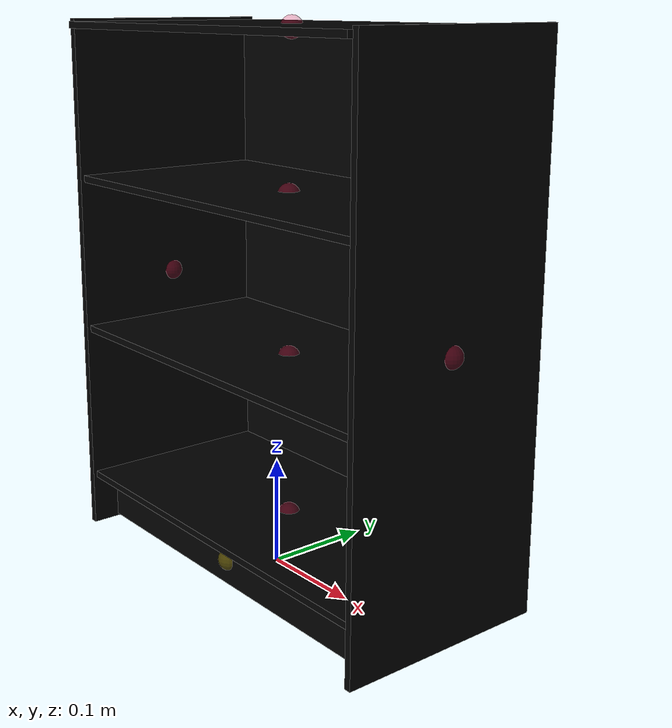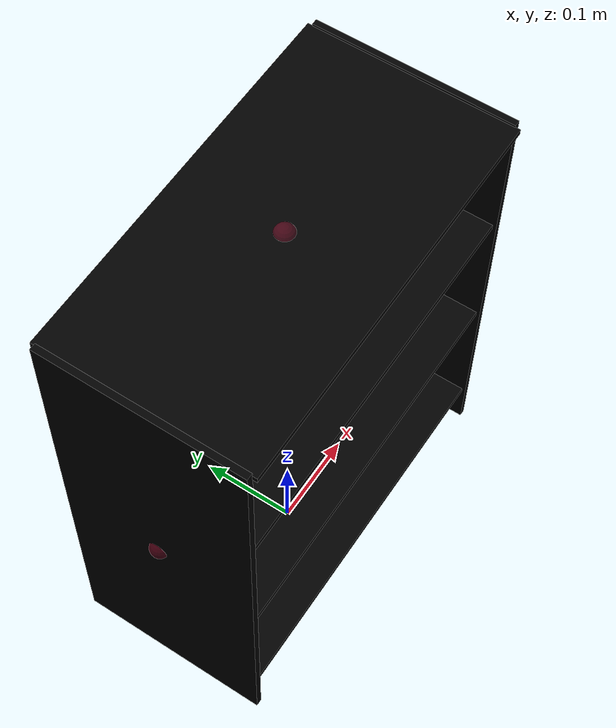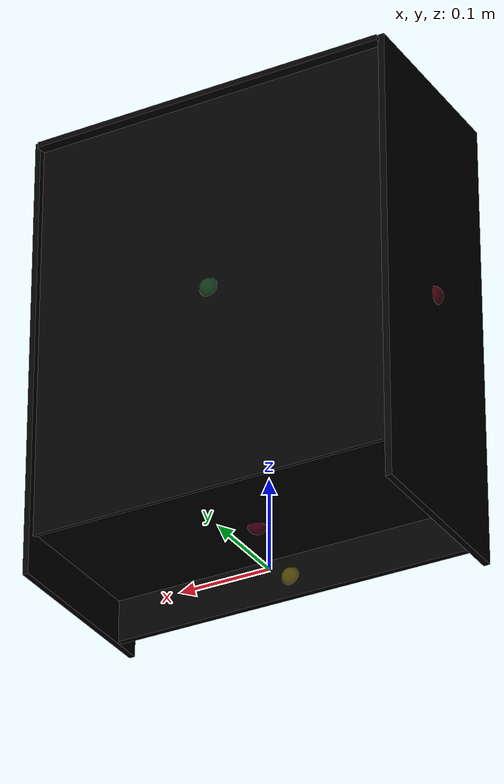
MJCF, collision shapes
<mujoco model="bookcase_billy_0190">
  <custom>
    <numeric data="-0.59152 0.200584 0.003247 0.50002 -0.49998 -0.50002 -0.49998" name="0_part0_initpos" />
    <numeric data="0.204606 0.237244 0.003247 0.674164 0.0 0.0 0.738582" name="7_part7_initpos" />
    <numeric data="-0.063768 0.239229 0.003247 0.688353 0.0 0.0 0.725376" name="6_part6_initpos" />
    <numeric data="0.17315 -0.227664 0.001744 0.707089 0.707089 -0.005017 -0.005017" name="5_part5_initpos" />
    <numeric data="-0.32363 0.248487 0.003247 0.69849 -0.0 -0.0 0.71562" name="4_part4_initpos" />
    <numeric data="0.497228 0.203915 0.002886 0.499994 -0.500006 0.499994 0.500006" name="3_part3_initpos" />
    <numeric data="-0.251576 -0.026907 0.003247 0.707101 0.7071 -0.00299 -0.00299" name="2_part2_initpos" />
    <numeric data="-0.287173 -0.203213 0.003247 0.998793 0.0 0.0 -0.04911" name="1_part1_initpos" />
  </custom>
  <asset>
    <mesh file="bookcase_billy_0190/0.stl" name="part0" scale="0.0005160960000000001 0.0005160960000000001 0.0005160960000000001" />
    <mesh file="bookcase_billy_0190/7.stl" name="part7" scale="0.0005160960000000001 0.0005160960000000001 0.0005160960000000001" />
    <mesh file="bookcase_billy_0190/6.stl" name="part6" scale="0.0005160960000000001 0.0005160960000000001 0.0005160960000000001" />
    <mesh file="bookcase_billy_0190/5.stl" name="part5" scale="0.0005160960000000001 0.0005160960000000001 0.0005160960000000001" />
    <mesh file="bookcase_billy_0190/4.stl" name="part4" scale="0.0005160960000000001 0.0005160960000000001 0.0005160960000000001" />
    <mesh file="bookcase_billy_0190/3.stl" name="part3" scale="0.0005160960000000001 0.0005160960000000001 0.0005160960000000001" />
    <mesh file="bookcase_billy_0190/2.stl" name="part2" scale="0.0005160960000000001 0.0005160960000000001 0.0005160960000000001" />
    <mesh file="bookcase_billy_0190/1.stl" name="part1" scale="0.0005160960000000001 0.0005160960000000001 0.0005160960000000001" />
  </asset>
  <worldbody><body name="combined_body" pos="-0.19 0.01 0.24906793275000003" quat="1 0 0 0"><geom conaffinity="0" contype="0" density="0" mesh="part0" name="0_part0_mesh" pos="0.0 1.032192e-09 0.0" rgba="0.82 0.71 0.55 1" type="mesh" quat="1 0 0 0" />
      <geom density="50" name="noviz_collision_0_part0_0" pos="0.0 1.032192e-09 0.0" quat="1 0 0 0" rgba="0 0 0 0" size="0.0034578431999999996 0.10203863040000001 0.2513968128" solref="0.001 1" type="box" />
    <site name="0_part0_horizontal_radius_site" pos="0.0 1.032192e-09 0.0" quat="1 0 0 0" rgba="0 0 0 0" size="0.010321919999999998" />
      <site name="0_part0_top_site" pos="0.0 1.032192e-09 0.0" quat="1 0 0 0" rgba="0 0 0 0" size="0.010321919999999998" />
      <site name="0_part0_bottom_site" pos="0.0 1.032192e-09 0.0" quat="1 0 0 0" rgba="0 0 0 0" size="0.010321919999999998" />
      <site name="0_part0_corner_site8" pos="0.0 1.032192e-09 0.0" quat="1 0 0 0" rgba="0 0 0 0" size="0.010321919999999998" />
      <site name="0_part0_corner_site7" pos="0.0 1.032192e-09 0.0" quat="1 0 0 0" rgba="0 0 0 0" size="0.010321919999999998" />
      <site name="0_part0_corner_site6" pos="0.0 1.032192e-09 0.0" quat="1 0 0 0" rgba="0 0 0 0" size="0.010321919999999998" />
      <site name="0_part0_corner_site5" pos="0.0 1.032192e-09 0.0" quat="1 0 0 0" rgba="0 0 0 0" size="0.010321919999999998" />
      <site name="0_part0_corner_site4" pos="0.0 1.032192e-09 0.0" quat="1 0 0 0" rgba="0 0 0 0" size="0.010321919999999998" />
      <site name="0_part0_corner_site3" pos="0.0 1.032192e-09 0.0" quat="1 0 0 0" rgba="0 0 0 0" size="0.010321919999999998" />
      <site name="0_part0_corner_site2" pos="0.0 1.032192e-09 0.0" quat="1 0 0 0" rgba="0 0 0 0" size="0.010321919999999998" />
      <site name="0_part0_corner_site1" pos="0.0 1.032192e-09 0.0" quat="1 0 0 0" rgba="0 0 0 0" size="0.010321919999999998" />
      <site name="sidepanel-horpanel,0,180,conn_site7" pos="0.0 1.032192e-09 0.0" quat="1 0 0 0" rgba="0.9019 0.0980 0.2941 0.3" size="0.010321919999999998" />
      <site name="sidepanel-horpanel,0,180,conn_site6" pos="0.0 1.032192e-09 0.0" quat="1 0 0 0" rgba="0.9019 0.0980 0.2941 0.3" size="0.010321919999999998" />
      <site name="sidepanel-horpanel,0,180,conn_site5" pos="0.0 1.032192e-09 0.0" quat="1 0 0 0" rgba="0.9019 0.0980 0.2941 0.3" size="0.010321919999999998" />
      <site name="sidepanel-horpanel,0,180,conn_site4" pos="0.0 1.032192e-09 0.0" quat="1 0 0 0" rgba="0.9019 0.0980 0.2941 0.3" size="0.010321919999999998" />
      <geom conaffinity="0" contype="0" density="0" mesh="part7" name="7_part7_mesh" pos="0.199909787148288 -0.0033464315953152003 0.1021396950024192" rgba="0.82 0.71 0.55 1" type="mesh" quat="1 0 0 0" />
      <geom density="50" name="noviz_collision_7_part7_0" pos="0.199909787148288 -0.0033464315953152003 0.1021396950024192" quat="1 0 0 0" rgba="0 0 0 0" size="0.196632576 0.09496811520000001 0.0032772096000000003" solref="0.001 1" type="box" />
    <site name="7_part7_horizontal_radius_site" pos="0.199909787148288 -0.0033464315953152003 0.1021396950024192" quat="1 0 0 0" rgba="0 0 0 0" size="0.010321919999999998" />
      <site name="7_part7_top_site" pos="0.199909787148288 -0.0033464315953152003 0.1021396950024192" quat="1 0 0 0" rgba="0 0 0 0" size="0.010321919999999998" />
      <site name="7_part7_bottom_site" pos="0.199909787148288 -0.0033464315953152003 0.1021396950024192" quat="1 0 0 0" rgba="0 0 0 0" size="0.010321919999999998" />
      <site name="7_part7_corner_site8" pos="0.199909787148288 -0.0033464315953152003 0.1021396950024192" quat="1 0 0 0" rgba="0 0 0 0" size="0.010321919999999998" />
      <site name="7_part7_corner_site7" pos="0.199909787148288 -0.0033464315953152003 0.1021396950024192" quat="1 0 0 0" rgba="0 0 0 0" size="0.010321919999999998" />
      <site name="7_part7_corner_site6" pos="0.199909787148288 -0.0033464315953152003 0.1021396950024192" quat="1 0 0 0" rgba="0 0 0 0" size="0.010321919999999998" />
      <site name="7_part7_corner_site5" pos="0.199909787148288 -0.0033464315953152003 0.1021396950024192" quat="1 0 0 0" rgba="0 0 0 0" size="0.010321919999999998" />
      <site name="7_part7_corner_site4" pos="0.199909787148288 -0.0033464315953152003 0.1021396950024192" quat="1 0 0 0" rgba="0 0 0 0" size="0.010321919999999998" />
      <site name="7_part7_corner_site3" pos="0.199909787148288 -0.0033464315953152003 0.1021396950024192" quat="1 0 0 0" rgba="0 0 0 0" size="0.010321919999999998" />
      <site name="7_part7_corner_site2" pos="0.199909787148288 -0.0033464315953152003 0.1021396950024192" quat="1 0 0 0" rgba="0 0 0 0" size="0.010321919999999998" />
      <site name="7_part7_corner_site1" pos="0.199909787148288 -0.0033464315953152003 0.1021396950024192" quat="1 0 0 0" rgba="0 0 0 0" size="0.010321919999999998" />
      <site name="horpanel-sidepanel,0,180,conn_site6" pos="0.199909787148288 -0.0033464315953152003 0.1021396950024192" quat="1 0 0 0" rgba="0.9019 0.0980 0.2941 0.3" size="0.010321919999999998" />
      <site name="horpanel-sidepanel,0,180,conn_site2" pos="0.199909787148288 -0.0033464315953152003 0.1021396950024192" quat="1 0 0 0" rgba="0.9019 0.0980 0.2941 0.3" size="0.010321919999999998" />
      <geom conaffinity="0" contype="0" density="0" mesh="part6" name="6_part6_mesh" pos="0.199909787148288 -0.0033464315953152003 -0.046427141246976" rgba="0.82 0.71 0.55 1" type="mesh" quat="1 0 0 0" />
      <geom density="50" name="noviz_collision_6_part6_0" pos="0.199909787148288 -0.0033464315953152003 -0.046427141246976" quat="1 0 0 0" rgba="0 0 0 0" size="0.196632576 0.09496811520000001 0.0032772096000000003" solref="0.001 1" type="box" />
    <site name="6_part6_horizontal_radius_site" pos="0.199909787148288 -0.0033464315953152003 -0.046427141246976" quat="1 0 0 0" rgba="0 0 0 0" size="0.010321919999999998" />
      <site name="6_part6_top_site" pos="0.199909787148288 -0.0033464315953152003 -0.046427141246976" quat="1 0 0 0" rgba="0 0 0 0" size="0.010321919999999998" />
      <site name="6_part6_bottom_site" pos="0.199909787148288 -0.0033464315953152003 -0.046427141246976" quat="1 0 0 0" rgba="0 0 0 0" size="0.010321919999999998" />
      <site name="6_part6_corner_site8" pos="0.199909787148288 -0.0033464315953152003 -0.046427141246976" quat="1 0 0 0" rgba="0 0 0 0" size="0.010321919999999998" />
      <site name="6_part6_corner_site7" pos="0.199909787148288 -0.0033464315953152003 -0.046427141246976" quat="1 0 0 0" rgba="0 0 0 0" size="0.010321919999999998" />
      <site name="6_part6_corner_site6" pos="0.199909787148288 -0.0033464315953152003 -0.046427141246976" quat="1 0 0 0" rgba="0 0 0 0" size="0.010321919999999998" />
      <site name="6_part6_corner_site5" pos="0.199909787148288 -0.0033464315953152003 -0.046427141246976" quat="1 0 0 0" rgba="0 0 0 0" size="0.010321919999999998" />
      <site name="6_part6_corner_site4" pos="0.199909787148288 -0.0033464315953152003 -0.046427141246976" quat="1 0 0 0" rgba="0 0 0 0" size="0.010321919999999998" />
      <site name="6_part6_corner_site3" pos="0.199909787148288 -0.0033464315953152003 -0.046427141246976" quat="1 0 0 0" rgba="0 0 0 0" size="0.010321919999999998" />
      <site name="6_part6_corner_site2" pos="0.199909787148288 -0.0033464315953152003 -0.046427141246976" quat="1 0 0 0" rgba="0 0 0 0" size="0.010321919999999998" />
      <site name="6_part6_corner_site1" pos="0.199909787148288 -0.0033464315953152003 -0.046427141246976" quat="1 0 0 0" rgba="0 0 0 0" size="0.010321919999999998" />
      <site name="horpanel-sidepanel,0,180,conn_site5" pos="0.199909787148288 -0.0033464315953152003 -0.046427141246976" quat="1 0 0 0" rgba="0.9019 0.0980 0.2941 0.3" size="0.010321919999999998" />
      <site name="horpanel-sidepanel,0,180,conn_site1" pos="0.199909787148288 -0.0033464315953152003 -0.046427141246976" quat="1 0 0 0" rgba="0.9019 0.0980 0.2941 0.3" size="0.010321919999999998" />
      <geom conaffinity="0" contype="0" density="0" mesh="part5" name="5_part5_mesh" pos="0.19990978560000003 0.09340047272263681 0.0196632544518144" rgba="0.82 0.71 0.55 1" type="mesh" quat="1 0 0 0" />
      <geom density="50" name="noviz_collision_5_part5_0" pos="0.19990978560000003 0.09340047272263681 0.0196632544518144" quat="1 0 0 0" rgba="0 0 0 0" size="0.19827118079999997 0.00177408 0.2260887552" solref="0.001 1" type="box" />
      <site name="5_part5_horizontal_radius_site" pos="0.19990978560000003 0.09340047272263681 0.0196632544518144" quat="1 0 0 0" rgba="0 0 0 0" size="0.010321919999999998" />
      <site name="5_part5_top_site" pos="0.19990978560000003 0.09340047272263681 0.0196632544518144" quat="1 0 0 0" rgba="0 0 0 0" size="0.010321919999999998" />
      <site name="5_part5_bottom_site" pos="0.19990978560000003 0.09340047272263681 0.0196632544518144" quat="1 0 0 0" rgba="0 0 0 0" size="0.010321919999999998" />
      <site name="5_part5_corner_site8" pos="0.19990978560000003 0.09340047272263681 0.0196632544518144" quat="1 0 0 0" rgba="0 0 0 0" size="0.010321919999999998" />
      <site name="5_part5_corner_site7" pos="0.19990978560000003 0.09340047272263681 0.0196632544518144" quat="1 0 0 0" rgba="0 0 0 0" size="0.010321919999999998" />
      <site name="5_part5_corner_site6" pos="0.19990978560000003 0.09340047272263681 0.0196632544518144" quat="1 0 0 0" rgba="0 0 0 0" size="0.010321919999999998" />
      <site name="5_part5_corner_site5" pos="0.19990978560000003 0.09340047272263681 0.0196632544518144" quat="1 0 0 0" rgba="0 0 0 0" size="0.010321919999999998" />
      <site name="5_part5_corner_site4" pos="0.19990978560000003 0.09340047272263681 0.0196632544518144" quat="1 0 0 0" rgba="0 0 0 0" size="0.010321919999999998" />
      <site name="5_part5_corner_site3" pos="0.19990978560000003 0.09340047272263681 0.0196632544518144" quat="1 0 0 0" rgba="0 0 0 0" size="0.010321919999999998" />
      <site name="5_part5_corner_site2" pos="0.19990978560000003 0.09340047272263681 0.0196632544518144" quat="1 0 0 0" rgba="0 0 0 0" size="0.010321919999999998" />
      <site name="5_part5_corner_site1" pos="0.19990978560000003 0.09340047272263681 0.0196632544518144" quat="1 0 0 0" rgba="0 0 0 0" size="0.010321919999999998" />
      <site name="backpanel-horpanel,0,180,conn_site1" pos="0.19990978560000003 0.09340047272263681 0.0196632544518144" quat="1 0 0 0" rgba="0.2352 0.7058 0.2941 0.3" size="0.010321919999999998" />
    <geom conaffinity="0" contype="0" density="0" mesh="part4" name="4_part4_mesh" pos="0.199909787148288 1.032192e-09 0.24579071999999996" rgba="0.82 0.71 0.55 1" type="mesh" quat="1 0 0 0" />
      <geom density="50" name="noviz_collision_4_part4_0" pos="0.199909787148288 1.032192e-09 0.24579071999999996" quat="1 0 0 0" rgba="0 0 0 0" size="0.19733575679999998 0.10697379839999999 0.0031030272" solref="0.001 1" type="box" />
    <site name="4_part4_horizontal_radius_site" pos="0.199909787148288 1.032192e-09 0.24579071999999996" quat="1 0 0 0" rgba="0 0 0 0" size="0.010321919999999998" />
      <site name="4_part4_top_site" pos="0.199909787148288 1.032192e-09 0.24579071999999996" quat="1 0 0 0" rgba="0 0 0 0" size="0.010321919999999998" />
      <site name="4_part4_bottom_site" pos="0.199909787148288 1.032192e-09 0.24579071999999996" quat="1 0 0 0" rgba="0 0 0 0" size="0.010321919999999998" />
      <site name="4_part4_corner_site8" pos="0.199909787148288 1.032192e-09 0.24579071999999996" quat="1 0 0 0" rgba="0 0 0 0" size="0.010321919999999998" />
      <site name="4_part4_corner_site7" pos="0.199909787148288 1.032192e-09 0.24579071999999996" quat="1 0 0 0" rgba="0 0 0 0" size="0.010321919999999998" />
      <site name="4_part4_corner_site6" pos="0.199909787148288 1.032192e-09 0.24579071999999996" quat="1 0 0 0" rgba="0 0 0 0" size="0.010321919999999998" />
      <site name="4_part4_corner_site5" pos="0.199909787148288 1.032192e-09 0.24579071999999996" quat="1 0 0 0" rgba="0 0 0 0" size="0.010321919999999998" />
      <site name="4_part4_corner_site4" pos="0.199909787148288 1.032192e-09 0.24579071999999996" quat="1 0 0 0" rgba="0 0 0 0" size="0.010321919999999998" />
      <site name="4_part4_corner_site3" pos="0.199909787148288 1.032192e-09 0.24579071999999996" quat="1 0 0 0" rgba="0 0 0 0" size="0.010321919999999998" />
      <site name="4_part4_corner_site2" pos="0.199909787148288 1.032192e-09 0.24579071999999996" quat="1 0 0 0" rgba="0 0 0 0" size="0.010321919999999998" />
      <site name="4_part4_corner_site1" pos="0.199909787148288 1.032192e-09 0.24579071999999996" quat="1 0 0 0" rgba="0 0 0 0" size="0.010321919999999998" />
      <site name="horpanel-sidepanel,0,180,conn_site7" pos="0.199909787148288 1.032192e-09 0.24579071999999996" quat="1 0 0 0" rgba="0.9019 0.0980 0.2941 0.3" size="0.010321919999999998" />
      <site name="horpanel-sidepanel,0,180,conn_site3" pos="0.199909787148288 1.032192e-09 0.24579071999999996" quat="1 0 0 0" rgba="0.9019 0.0980 0.2941 0.3" size="0.010321919999999998" />
      <geom conaffinity="0" contype="0" density="0" mesh="part3" name="3_part3_mesh" pos="0.39981957754798075 1.032192e-09 0.0" rgba="0.82 0.71 0.55 1" type="mesh" quat="1 0 0 0" />
      <geom density="50" name="noviz_collision_3_part3_0" pos="0.39981957754798075 1.032192e-09 0.0" quat="1 0 0 0" rgba="0 0 0 0" size="0.0030965759999999993 0.10203863040000001 0.2513968128" solref="0.001 1" type="box" />
    <site name="3_part3_horizontal_radius_site" pos="0.39981957754798075 1.032192e-09 0.0" quat="1 0 0 0" rgba="0 0 0 0" size="0.010321919999999998" />
      <site name="3_part3_top_site" pos="0.39981957754798075 1.032192e-09 0.0" quat="1 0 0 0" rgba="0 0 0 0" size="0.010321919999999998" />
      <site name="3_part3_bottom_site" pos="0.39981957754798075 1.032192e-09 0.0" quat="1 0 0 0" rgba="0 0 0 0" size="0.010321919999999998" />
      <site name="3_part3_corner_site8" pos="0.39981957754798075 1.032192e-09 0.0" quat="1 0 0 0" rgba="0 0 0 0" size="0.010321919999999998" />
      <site name="3_part3_corner_site7" pos="0.39981957754798075 1.032192e-09 0.0" quat="1 0 0 0" rgba="0 0 0 0" size="0.010321919999999998" />
      <site name="3_part3_corner_site6" pos="0.39981957754798075 1.032192e-09 0.0" quat="1 0 0 0" rgba="0 0 0 0" size="0.010321919999999998" />
      <site name="3_part3_corner_site5" pos="0.39981957754798075 1.032192e-09 0.0" quat="1 0 0 0" rgba="0 0 0 0" size="0.010321919999999998" />
      <site name="3_part3_corner_site4" pos="0.39981957754798075 1.032192e-09 0.0" quat="1 0 0 0" rgba="0 0 0 0" size="0.010321919999999998" />
      <site name="3_part3_corner_site3" pos="0.39981957754798075 1.032192e-09 0.0" quat="1 0 0 0" rgba="0 0 0 0" size="0.010321919999999998" />
      <site name="3_part3_corner_site2" pos="0.39981957754798075 1.032192e-09 0.0" quat="1 0 0 0" rgba="0 0 0 0" size="0.010321919999999998" />
      <site name="3_part3_corner_site1" pos="0.39981957754798075 1.032192e-09 0.0" quat="1 0 0 0" rgba="0 0 0 0" size="0.010321919999999998" />
      <site name="sidepanel-horpanel,0,180,conn_site3" pos="0.39981957754798075 1.032192e-09 0.0" quat="1 0 0 0" rgba="0.9019 0.0980 0.2941 0.3" size="0.010321919999999998" />
      <site name="sidepanel-horpanel,0,180,conn_site2" pos="0.39981957754798075 1.032192e-09 0.0" quat="1 0 0 0" rgba="0.9019 0.0980 0.2941 0.3" size="0.010321919999999998" />
      <site name="sidepanel-horpanel,0,180,conn_site1" pos="0.39981957754798075 1.032192e-09 0.0" quat="1 0 0 0" rgba="0.9019 0.0980 0.2941 0.3" size="0.010321919999999998" />
      <site name="sidepanel-horpanel,0,180,conn_site0" pos="0.39981957754798075 1.032192e-09 0.0" quat="1 0 0 0" rgba="0.9019 0.0980 0.2941 0.3" size="0.010321919999999998" />
      <geom conaffinity="0" contype="0" density="0" mesh="part2" name="2_part2_mesh" pos="0.199909787148288 -0.07246294013952 -0.2261274651353088" rgba="0.82 0.71 0.55 1" type="mesh" quat="1 0 0 0" />
      <geom density="50" name="noviz_collision_2_part2_0" pos="0.199909787148288 -0.07246294013952 -0.2261274651353088" quat="1 0 0 0" rgba="0 0 0 0" size="0.196632576 0.0032772096000000003 0.022901759999999997" solref="0.001 1" type="box" />
    <site name="2_part2_horizontal_radius_site" pos="0.199909787148288 -0.07246294013952 -0.2261274651353088" quat="1 0 0 0" rgba="0 0 0 0" size="0.010321919999999998" />
      <site name="2_part2_top_site" pos="0.199909787148288 -0.07246294013952 -0.2261274651353088" quat="1 0 0 0" rgba="0 0 0 0" size="0.010321919999999998" />
      <site name="2_part2_bottom_site" pos="0.199909787148288 -0.07246294013952 -0.2261274651353088" quat="1 0 0 0" rgba="0 0 0 0" size="0.010321919999999998" />
      <site name="2_part2_corner_site8" pos="0.199909787148288 -0.07246294013952 -0.2261274651353088" quat="1 0 0 0" rgba="0 0 0 0" size="0.010321919999999998" />
      <site name="2_part2_corner_site7" pos="0.199909787148288 -0.07246294013952 -0.2261274651353088" quat="1 0 0 0" rgba="0 0 0 0" size="0.010321919999999998" />
      <site name="2_part2_corner_site6" pos="0.199909787148288 -0.07246294013952 -0.2261274651353088" quat="1 0 0 0" rgba="0 0 0 0" size="0.010321919999999998" />
      <site name="2_part2_corner_site5" pos="0.199909787148288 -0.07246294013952 -0.2261274651353088" quat="1 0 0 0" rgba="0 0 0 0" size="0.010321919999999998" />
      <site name="2_part2_corner_site4" pos="0.199909787148288 -0.07246294013952 -0.2261274651353088" quat="1 0 0 0" rgba="0 0 0 0" size="0.010321919999999998" />
      <site name="2_part2_corner_site3" pos="0.199909787148288 -0.07246294013952 -0.2261274651353088" quat="1 0 0 0" rgba="0 0 0 0" size="0.010321919999999998" />
      <site name="2_part2_corner_site2" pos="0.199909787148288 -0.07246294013952 -0.2261274651353088" quat="1 0 0 0" rgba="0 0 0 0" size="0.010321919999999998" />
      <site name="2_part2_corner_site1" pos="0.199909787148288 -0.07246294013952 -0.2261274651353088" quat="1 0 0 0" rgba="0 0 0 0" size="0.010321919999999998" />
      <site name="botsupport-horpanel,0,180,conn_site1" pos="0.199909787148288 -0.07246294013952 -0.2261274651353088" quat="1 0 0 0" rgba="1.0 0.8823 0.0980 0.3" size="0.010321919999999998" />
      <geom conaffinity="0" contype="0" density="0" mesh="part1" name="1_part1_mesh" pos="0.199909787148288 -0.0033464315953152003 -0.1999097887481856" rgba="0.82 0.71 0.55 1" type="mesh" quat="1 0 0 0" />
      <geom density="50" name="noviz_collision_1_part1_0" pos="0.199909787148288 -0.0033464315953152003 -0.1999097887481856" quat="1 0 0 0" rgba="0 0 0 0" size="0.1974454272 0.09496811520000001 0.0032514047999999997" solref="0.001 1" type="box" />
      <site name="1_part1_horizontal_radius_site" pos="0.199909787148288 -0.0033464315953152003 -0.1999097887481856" quat="1 0 0 0" rgba="0 0 0 0" size="0.010321919999999998" />
      <site name="1_part1_top_site" pos="0.199909787148288 -0.0033464315953152003 -0.1999097887481856" quat="1 0 0 0" rgba="0 0 0 0" size="0.010321919999999998" />
      <site name="1_part1_bottom_site" pos="0.199909787148288 -0.0033464315953152003 -0.1999097887481856" quat="1 0 0 0" rgba="0 0 0 0" size="0.010321919999999998" />
      <site name="1_part1_corner_site8" pos="0.199909787148288 -0.0033464315953152003 -0.1999097887481856" quat="1 0 0 0" rgba="0 0 0 0" size="0.010321919999999998" />
      <site name="1_part1_corner_site7" pos="0.199909787148288 -0.0033464315953152003 -0.1999097887481856" quat="1 0 0 0" rgba="0 0 0 0" size="0.010321919999999998" />
      <site name="1_part1_corner_site6" pos="0.199909787148288 -0.0033464315953152003 -0.1999097887481856" quat="1 0 0 0" rgba="0 0 0 0" size="0.010321919999999998" />
      <site name="1_part1_corner_site5" pos="0.199909787148288 -0.0033464315953152003 -0.1999097887481856" quat="1 0 0 0" rgba="0 0 0 0" size="0.010321919999999998" />
      <site name="1_part1_corner_site4" pos="0.199909787148288 -0.0033464315953152003 -0.1999097887481856" quat="1 0 0 0" rgba="0 0 0 0" size="0.010321919999999998" />
      <site name="1_part1_corner_site3" pos="0.199909787148288 -0.0033464315953152003 -0.1999097887481856" quat="1 0 0 0" rgba="0 0 0 0" size="0.010321919999999998" />
      <site name="1_part1_corner_site2" pos="0.199909787148288 -0.0033464315953152003 -0.1999097887481856" quat="1 0 0 0" rgba="0 0 0 0" size="0.010321919999999998" />
      <site name="1_part1_corner_site1" pos="0.199909787148288 -0.0033464315953152003 -0.1999097887481856" quat="1 0 0 0" rgba="0 0 0 0" size="0.010321919999999998" />
      <site name="horpanel-sidepanel,0,180,conn_site4" pos="0.199909787148288 -0.0033464315953152003 -0.1999097887481856" quat="1 0 0 0" rgba="0.9019 0.0980 0.2941 0.3" size="0.010321919999999998" />
      <site name="horpanel-sidepanel,0,180,conn_site0" pos="0.199909787148288 -0.0033464315953152003 -0.1999097887481856" quat="1 0 0 0" rgba="0.9019 0.0980 0.2941 0.3" size="0.010321919999999998" />
      <site name="horpanel-botsupport,0,180,conn_site1" pos="0.199909787148288 -0.0033464315953152003 -0.1999097887481856" quat="1 0 0 0" rgba="1.0 0.8823 0.0980 0.3" size="0.010321919999999998" />
      <site name="horpanel-backpanel,0,180,conn_site1" pos="0.199909787148288 -0.0033464315953152003 -0.1999097887481856" quat="1 0 0 0" rgba="0.2352 0.7058 0.2941 0.3" size="0.010321919999999998" />
    </body></worldbody><actuator />
  <sensor />
  <contact />
  <default />
</mujoco>
